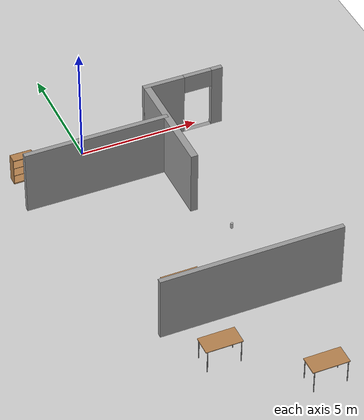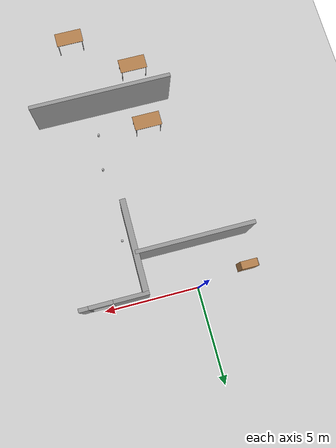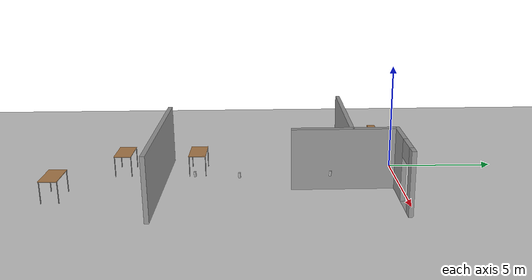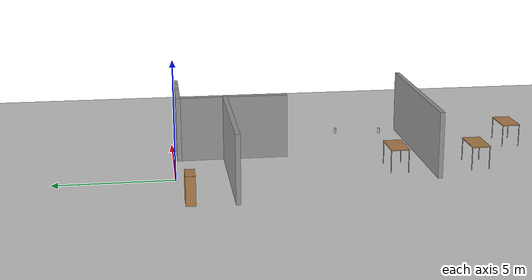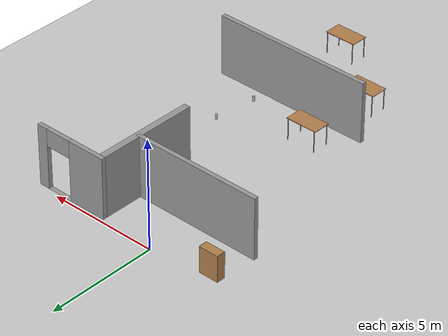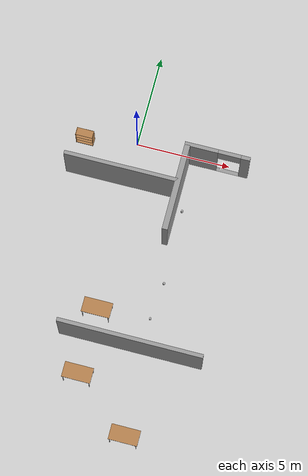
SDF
<sdf version="1.7">
 <world name="default">
  <light name="sun" type="directional">
   <pose>0 0 10 0 -0 0</pose>
   <diffuse>0.8 0.8 0.8 1</diffuse>
   <specular>0.2 0.2 0.2 1</specular>
   <attenuation>
    <range>1000</range>
    <constant>0.9</constant>
    <linear>0.01</linear>
    <quadratic>0.001</quadratic>
   </attenuation>
   <direction>-0.5 0.1 -0.9</direction>
   <spot><inner_angle>0</inner_angle><outer_angle>0</outer_angle><falloff>0</falloff></spot>
  </light>
  <model name="ground_plane">
   <static>1</static>
   <link name="link">
    <collision name="collision">
     <geometry><plane><normal>0 0 1</normal><size>100 100</size></plane></geometry>
     <surface><friction><ode><mu>100</mu><mu2>50</mu2></ode></friction></surface>
    </collision>
    <visual name="visual">
     <cast_shadows>0</cast_shadows>
     <geometry><plane><normal>0 0 1</normal><size>100 100</size></plane></geometry>
     <material>
      <script><uri>file://media/materials/scripts/gazebo.material</uri><name>Gazebo/Grey</name></script>
     </material>
    </visual>
   </link>
  </model>
  <gravity>0 0 -9.8</gravity>
  <magnetic_field>6e-06 2.3e-05 -4.2e-05</magnetic_field>
  <atmosphere type="adiabatic"/>
  <physics type="ode">
   <max_step_size>0.001</max_step_size>
   <real_time_factor>1</real_time_factor>
   <real_time_update_rate>1000</real_time_update_rate>
  </physics>
  <scene><ambient>0.4 0.4 0.4 1</ambient><background>0.7 0.7 0.7 1</background><shadows>1</shadows></scene>
  <spherical_coordinates>
   <surface_model>EARTH_WGS84</surface_model>
   <latitude_deg>0</latitude_deg>
   <longitude_deg>0</longitude_deg>
   <elevation>0</elevation>
   <heading_deg>0</heading_deg>
  </spherical_coordinates>
  <model name="table">
   <static>1</static>
   <link name="link">
    <collision name="surface">
     <pose>0 0 1 0 -0 0</pose>
     <geometry><box><size>1.5 0.8 0.03</size></box></geometry>
     <surface><friction><ode><mu>0.6</mu><mu2>0.6</mu2></ode></friction></surface>
    </collision>
    <visual name="visual1">
     <pose>0 0 1 0 -0 0</pose>
     <geometry><box><size>1.5 0.8 0.03</size></box></geometry>
     <material>
      <script><uri>file://media/materials/scripts/gazebo.material</uri><name>Gazebo/Wood</name></script>
     </material>
    </visual>
    <collision name="front_left_leg">
     <pose>0.68 0.38 0.5 0 -0 0</pose>
     <geometry><cylinder><radius>0.02</radius><length>1</length></cylinder></geometry>
    </collision>
    <visual name="front_left_leg">
     <pose>0.68 0.38 0.5 0 -0 0</pose>
     <geometry><cylinder><radius>0.02</radius><length>1</length></cylinder></geometry>
     <material>
      <script><uri>file://media/materials/scripts/gazebo.material</uri><name>Gazebo/Grey</name></script>
     </material>
    </visual>
    <collision name="front_right_leg">
     <pose>0.68 -0.38 0.5 0 -0 0</pose>
     <geometry><cylinder><radius>0.02</radius><length>1</length></cylinder></geometry>
    </collision>
    <visual name="front_right_leg">
     <pose>0.68 -0.38 0.5 0 -0 0</pose>
     <geometry><cylinder><radius>0.02</radius><length>1</length></cylinder></geometry>
     <material>
      <script><uri>file://media/materials/scripts/gazebo.material</uri><name>Gazebo/Grey</name></script>
     </material>
    </visual>
    <collision name="back_right_leg">
     <pose>-0.68 -0.38 0.5 0 -0 0</pose>
     <geometry><cylinder><radius>0.02</radius><length>1</length></cylinder></geometry>
    </collision>
    <visual name="back_right_leg">
     <pose>-0.68 -0.38 0.5 0 -0 0</pose>
     <geometry><cylinder><radius>0.02</radius><length>1</length></cylinder></geometry>
     <material>
      <script><uri>file://media/materials/scripts/gazebo.material</uri><name>Gazebo/Grey</name></script>
     </material>
    </visual>
    <collision name="back_left_leg">
     <pose>-0.68 0.38 0.5 0 -0 0</pose>
     <geometry><cylinder><radius>0.02</radius><length>1</length></cylinder></geometry>
    </collision>
    <visual name="back_left_leg">
     <pose>-0.68 0.38 0.5 0 -0 0</pose>
     <geometry><cylinder><radius>0.02</radius><length>1</length></cylinder></geometry>
     <material>
      <script><uri>file://media/materials/scripts/gazebo.material</uri><name>Gazebo/Grey</name></script>
     </material>
    </visual>
   </link>
   <pose>0.349528 -9.32869 0 0 -0 0</pose>
  </model>
  <model name="beer">
   <link name="link">
    <pose>0 0 0.115 0 -0 0</pose>
    <inertial>
     <mass>0.39</mass>
     <inertia><ixx>0.00058</ixx><ixy>0</ixy><ixz>0</ixz><iyy>0.00058</iyy><iyz>0</iyz><izz>0.00019</izz></inertia>
    </inertial>
    <collision name="collision">
     <geometry><cylinder><radius>0.055</radius><length>0.23</length></cylinder></geometry>
    </collision>
    <visual name="visual">
     <geometry><cylinder><radius>0.055</radius><length>0.23</length></cylinder></geometry>
     <material>
      <script>
       <uri>model://beer/materials/scripts</uri>
       <uri>model://beer/materials/textures</uri>
       <name>Beer/Diffuse</name>
      </script>
     </material>
    </visual>
   </link>
   <pose>3.09993 -9.20004 0.775001 -1e-06 2.7e-05 0.030874</pose>
  </model>
  <model name="beer_0">
   <link name="link">
    <pose>0 0 0.115 0 -0 0</pose>
    <inertial>
     <mass>0.39</mass>
     <inertia><ixx>0.00058</ixx><ixy>0</ixy><ixz>0</ixz><iyy>0.00058</iyy><iyz>0</iyz><izz>0.00019</izz></inertia>
    </inertial>
    <collision name="collision">
     <geometry><cylinder><radius>0.055</radius><length>0.23</length></cylinder></geometry>
    </collision>
    <visual name="visual">
     <geometry><cylinder><radius>0.055</radius><length>0.23</length></cylinder></geometry>
     <material>
      <script>
       <uri>model://beer/materials/scripts</uri>
       <uri>model://beer/materials/textures</uri>
       <name>Beer/Diffuse</name>
      </script>
     </material>
    </visual>
   </link>
   <pose>3.2523 -3.26601 0.775001 -1e-06 2.6e-05 0.019519</pose>
  </model>
  <model name="table_1">
   <static>1</static>
   <link name="link">
    <collision name="surface">
     <pose>0 0 1 0 -0 0</pose>
     <geometry><box><size>1.5 0.8 0.03</size></box></geometry>
     <surface><friction><ode><mu>0.6</mu><mu2>0.6</mu2></ode></friction></surface>
    </collision>
    <visual name="visual1">
     <pose>0 0 1 0 -0 0</pose>
     <geometry><box><size>1.5 0.8 0.03</size></box></geometry>
     <material>
      <script><uri>file://media/materials/scripts/gazebo.material</uri><name>Gazebo/Wood</name></script>
     </material>
    </visual>
    <collision name="front_left_leg">
     <pose>0.68 0.38 0.5 0 -0 0</pose>
     <geometry><cylinder><radius>0.02</radius><length>1</length></cylinder></geometry>
    </collision>
    <visual name="front_left_leg">
     <pose>0.68 0.38 0.5 0 -0 0</pose>
     <geometry><cylinder><radius>0.02</radius><length>1</length></cylinder></geometry>
     <material>
      <script><uri>file://media/materials/scripts/gazebo.material</uri><name>Gazebo/Grey</name></script>
     </material>
    </visual>
    <collision name="front_right_leg">
     <pose>0.68 -0.38 0.5 0 -0 0</pose>
     <geometry><cylinder><radius>0.02</radius><length>1</length></cylinder></geometry>
    </collision>
    <visual name="front_right_leg">
     <pose>0.68 -0.38 0.5 0 -0 0</pose>
     <geometry><cylinder><radius>0.02</radius><length>1</length></cylinder></geometry>
     <material>
      <script><uri>file://media/materials/scripts/gazebo.material</uri><name>Gazebo/Grey</name></script>
     </material>
    </visual>
    <collision name="back_right_leg">
     <pose>-0.68 -0.38 0.5 0 -0 0</pose>
     <geometry><cylinder><radius>0.02</radius><length>1</length></cylinder></geometry>
    </collision>
    <visual name="back_right_leg">
     <pose>-0.68 -0.38 0.5 0 -0 0</pose>
     <geometry><cylinder><radius>0.02</radius><length>1</length></cylinder></geometry>
     <material>
      <script><uri>file://media/materials/scripts/gazebo.material</uri><name>Gazebo/Grey</name></script>
     </material>
    </visual>
    <collision name="back_left_leg">
     <pose>-0.68 0.38 0.5 0 -0 0</pose>
     <geometry><cylinder><radius>0.02</radius><length>1</length></cylinder></geometry>
    </collision>
    <visual name="back_left_leg">
     <pose>-0.68 0.38 0.5 0 -0 0</pose>
     <geometry><cylinder><radius>0.02</radius><length>1</length></cylinder></geometry>
     <material>
      <script><uri>file://media/materials/scripts/gazebo.material</uri><name>Gazebo/Grey</name></script>
     </material>
    </visual>
   </link>
   <pose>3.37991 -15.2712 0 0 -0 0</pose>
  </model>
  <model name="beer_4">
   <link name="link">
    <pose>0 0 0.115 0 -0 0</pose>
    <inertial>
     <mass>0.39</mass>
     <inertia><ixx>0.00058</ixx><ixy>0</ixy><ixz>0</ixz><iyy>0.00058</iyy><iyz>0</iyz><izz>0.00019</izz></inertia>
    </inertial>
    <collision name="collision">
     <geometry><cylinder><radius>0.055</radius><length>0.23</length></cylinder></geometry>
    </collision>
    <visual name="visual">
     <geometry><cylinder><radius>0.055</radius><length>0.23</length></cylinder></geometry>
     <material>
      <script>
       <uri>model://beer/materials/scripts</uri>
       <uri>model://beer/materials/textures</uri>
       <name>Beer/Diffuse</name>
      </script>
     </material>
    </visual>
   </link>
   <pose>3.32341 -7.24273 0.77499 1e-06 -2.7e-05 0.028266</pose>
  </model>
  <model name="bookshelf_0">
   <static>1</static>
   <link name="link">
    <inertial><mass>1</mass></inertial>
    <collision name="back">
     <pose>0 0.005 0.6 0 -0 0</pose>
     <geometry><box><size>0.9 0.01 1.2</size></box></geometry>
    </collision>
    <visual name="visual1">
     <pose>0 0.005 0.6 0 -0 0</pose>
     <geometry><box><size>0.9 0.01 1.2</size></box></geometry>
     <material>
      <script><uri>file://media/materials/scripts/gazebo.material</uri><name>Gazebo/Wood</name></script>
     </material>
    </visual>
    <collision name="left_side">
     <pose>0.45 -0.195 0.6 0 -0 0</pose>
     <geometry><box><size>0.02 0.4 1.2</size></box></geometry>
    </collision>
    <visual name="visual2">
     <pose>0.45 -0.195 0.6 0 -0 0</pose>
     <geometry><box><size>0.02 0.4 1.2</size></box></geometry>
     <material>
      <script><uri>file://media/materials/scripts/gazebo.material</uri><name>Gazebo/Wood</name></script>
     </material>
    </visual>
    <collision name="right_side">
     <pose>-0.45 -0.195 0.6 0 -0 0</pose>
     <geometry><box><size>0.02 0.4 1.2</size></box></geometry>
    </collision>
    <visual name="visual3">
     <pose>-0.45 -0.195 0.6 0 -0 0</pose>
     <geometry><box><size>0.02 0.4 1.2</size></box></geometry>
     <material>
      <script><uri>file://media/materials/scripts/gazebo.material</uri><name>Gazebo/Wood</name></script>
     </material>
    </visual>
    <collision name="bottom">
     <pose>0 -0.195 0.03 0 -0 0</pose>
     <geometry><box><size>0.88 0.4 0.06</size></box></geometry>
    </collision>
    <visual name="visual4">
     <pose>0 -0.195 0.03 0 -0 0</pose>
     <geometry><box><size>0.88 0.4 0.06</size></box></geometry>
     <material>
      <script><uri>file://media/materials/scripts/gazebo.material</uri><name>Gazebo/Wood</name></script>
     </material>
    </visual>
    <collision name="top">
     <pose>0 -0.195 1.19 0 -0 0</pose>
     <geometry><box><size>0.88 0.4 0.02</size></box></geometry>
    </collision>
    <visual name="visual5">
     <pose>0 -0.195 1.19 0 -0 0</pose>
     <geometry><box><size>0.88 0.4 0.02</size></box></geometry>
     <material>
      <script><uri>file://media/materials/scripts/gazebo.material</uri><name>Gazebo/Wood</name></script>
     </material>
    </visual>
    <collision name="low_shelf">
     <pose>0 -0.195 0.43 0 -0 0</pose>
     <geometry><box><size>0.88 0.4 0.02</size></box></geometry>
    </collision>
    <visual name="visual6">
     <pose>0 -0.195 0.43 0 -0 0</pose>
     <geometry><box><size>0.88 0.4 0.02</size></box></geometry>
     <material>
      <script><uri>file://media/materials/scripts/gazebo.material</uri><name>Gazebo/Wood</name></script>
     </material>
    </visual>
    <collision name="high_shelf">
     <pose>0 -0.195 0.8 0 -0 0</pose>
     <geometry><box><size>0.88 0.4 0.02</size></box></geometry>
    </collision>
    <visual name="visual7">
     <pose>0 -0.195 0.8 0 -0 0</pose>
     <geometry><box><size>0.88 0.4 0.02</size></box></geometry>
     <material>
      <script><uri>file://media/materials/scripts/gazebo.material</uri><name>Gazebo/Wood</name></script>
     </material>
    </visual>
   </link>
   <pose>-2.72283 -0.27346 0 0 -0 0</pose>
  </model>
  <model name="grey_wall">
   <static>1</static>
   <link name="link">
    <pose>0 0 1.4 0 -0 0</pose>
    <collision name="collision"><geometry><box><size>7.5 0.2 2.8</size></box></geometry></collision>
    <visual name="visual">
     <cast_shadows>0</cast_shadows>
     <geometry><box><size>7.5 0.2 2.8</size></box></geometry>
     <material>
      <script>
       <uri>model://grey_wall/materials/scripts</uri>
       <uri>model://grey_wall/materials/textures</uri>
       <name>vrc/grey_wall</name>
      </script>
     </material>
    </visual>
   </link>
   <pose>2.48885 -10.8081 0 0 -0 0</pose>
  </model>
  <model name="table_0">
   <static>1</static>
   <link name="link">
    <collision name="surface">
     <pose>0 0 1 0 -0 0</pose>
     <geometry><box><size>1.5 0.8 0.03</size></box></geometry>
     <surface><friction><ode><mu>0.6</mu><mu2>0.6</mu2></ode></friction></surface>
    </collision>
    <visual name="visual1">
     <pose>0 0 1 0 -0 0</pose>
     <geometry><box><size>1.5 0.8 0.03</size></box></geometry>
     <material>
      <script><uri>file://media/materials/scripts/gazebo.material</uri><name>Gazebo/Wood</name></script>
     </material>
    </visual>
    <collision name="front_left_leg">
     <pose>0.68 0.38 0.5 0 -0 0</pose>
     <geometry><cylinder><radius>0.02</radius><length>1</length></cylinder></geometry>
    </collision>
    <visual name="front_left_leg">
     <pose>0.68 0.38 0.5 0 -0 0</pose>
     <geometry><cylinder><radius>0.02</radius><length>1</length></cylinder></geometry>
     <material>
      <script><uri>file://media/materials/scripts/gazebo.material</uri><name>Gazebo/Grey</name></script>
     </material>
    </visual>
    <collision name="front_right_leg">
     <pose>0.68 -0.38 0.5 0 -0 0</pose>
     <geometry><cylinder><radius>0.02</radius><length>1</length></cylinder></geometry>
    </collision>
    <visual name="front_right_leg">
     <pose>0.68 -0.38 0.5 0 -0 0</pose>
     <geometry><cylinder><radius>0.02</radius><length>1</length></cylinder></geometry>
     <material>
      <script><uri>file://media/materials/scripts/gazebo.material</uri><name>Gazebo/Grey</name></script>
     </material>
    </visual>
    <collision name="back_right_leg">
     <pose>-0.68 -0.38 0.5 0 -0 0</pose>
     <geometry><cylinder><radius>0.02</radius><length>1</length></cylinder></geometry>
    </collision>
    <visual name="back_right_leg">
     <pose>-0.68 -0.38 0.5 0 -0 0</pose>
     <geometry><cylinder><radius>0.02</radius><length>1</length></cylinder></geometry>
     <material>
      <script><uri>file://media/materials/scripts/gazebo.material</uri><name>Gazebo/Grey</name></script>
     </material>
    </visual>
    <collision name="back_left_leg">
     <pose>-0.68 0.38 0.5 0 -0 0</pose>
     <geometry><cylinder><radius>0.02</radius><length>1</length></cylinder></geometry>
    </collision>
    <visual name="back_left_leg">
     <pose>-0.68 0.38 0.5 0 -0 0</pose>
     <geometry><cylinder><radius>0.02</radius><length>1</length></cylinder></geometry>
     <material>
      <script><uri>file://media/materials/scripts/gazebo.material</uri><name>Gazebo/Grey</name></script>
     </material>
    </visual>
   </link>
   <pose>0.289375 -12.8176 0 0 -0 0</pose>
  </model>
  <model name="Untitled">
   <pose>1.39732 -1.187 0 0 -0 0</pose>
   <link name="Wall_0">
    <pose>2.93233 0.928384 0 0 -0 0</pose>
    <visual name="Wall_0_Visual_0">
     <pose>-0.84188 0 1.4 0 -0 0</pose>
     <geometry><box><size>1.76624 0.2 2.8</size></box></geometry>
     <material>
      <script><uri>file://media/materials/scripts/gazebo.material</uri><name>Gazebo/Grey</name></script>
      <ambient>1 1 1 1</ambient>
     </material>
     <meta><layer>0</layer></meta>
    </visual>
    <collision name="Wall_0_Collision_0">
     <geometry><box><size>1.76624 0.2 2.8</size></box></geometry>
     <pose>-0.84188 0 1.4 0 -0 0</pose>
    </collision>
    <visual name="Wall_0_Visual_1">
     <pose>1.48312 0 1.4 0 -0 0</pose>
     <geometry><box><size>0.48376 0.2 2.8</size></box></geometry>
     <material>
      <script><uri>file://media/materials/scripts/gazebo.material</uri><name>Gazebo/Grey</name></script>
      <ambient>1 1 1 1</ambient>
     </material>
     <meta><layer>0</layer></meta>
    </visual>
    <collision name="Wall_0_Collision_1">
     <geometry><box><size>0.48376 0.2 2.8</size></box></geometry>
     <pose>1.48312 0 1.4 0 -0 0</pose>
    </collision>
    <visual name="Wall_0_Visual_2">
     <pose>0.64124 0 0 0 -0 0</pose>
     <geometry><box><size>1.2 0.2 0</size></box></geometry>
     <material>
      <script><uri>file://media/materials/scripts/gazebo.material</uri><name>Gazebo/Grey</name></script>
      <ambient>1 1 1 1</ambient>
     </material>
     <meta><layer>0</layer></meta>
    </visual>
    <collision name="Wall_0_Collision_2">
     <geometry><box><size>1.2 0.2 0</size></box></geometry>
     <pose>0.64124 0 0 0 -0 0</pose>
    </collision>
    <visual name="Wall_0_Visual_3">
     <pose>0.64124 0 2.4 0 -0 0</pose>
     <geometry><box><size>1.2 0.2 0.8</size></box></geometry>
     <material>
      <script><uri>file://media/materials/scripts/gazebo.material</uri><name>Gazebo/Grey</name></script>
      <ambient>1 1 1 1</ambient>
     </material>
     <meta><layer>0</layer></meta>
    </visual>
    <collision name="Wall_0_Collision_3">
     <geometry><box><size>1.2 0.2 0.8</size></box></geometry>
     <pose>0.64124 0 2.4 0 -0 0</pose>
    </collision>
   </link>
   <link name="Wall_1">
    <collision name="Wall_1_Collision">
     <geometry><box><size>0.15 0.15 2.5</size></box></geometry>
     <pose>0 0 1.25 0 -0 0</pose>
    </collision>
    <visual name="Wall_1_Visual">
     <pose>0 0 1.25 0 -0 0</pose>
     <geometry><box><size>0.15 0.15 2.5</size></box></geometry>
     <material>
      <script><uri>file://media/materials/scripts/gazebo.material</uri><name>Gazebo/Grey</name></script>
      <ambient>1 1 1 1</ambient>
     </material>
     <meta><layer>0</layer></meta>
    </visual>
    <pose>4.55733 0.92406 0 0 -0 0</pose>
   </link>
   <link name="Wall_3">
    <collision name="Wall_3_Collision">
     <geometry><box><size>6.05002 0.2 2.8</size></box></geometry>
     <pose>0 0 1.4 0 -0 0</pose>
    </collision>
    <visual name="Wall_3_Visual">
     <pose>0 0 1.4 0 -0 0</pose>
     <geometry><box><size>6.05002 0.2 2.8</size></box></geometry>
     <material>
      <script><uri>file://media/materials/scripts/gazebo.material</uri><name>Gazebo/Grey</name></script>
      <ambient>1 1 1 1</ambient>
     </material>
     <meta><layer>0</layer></meta>
    </visual>
    <pose>-1.63232 -1.087 0 0 -0 0</pose>
   </link>
   <static>1</static>
  </model>
  <model name="Untitled_0">
   <pose>1.45301 -2.48492 0 0 -0 0</pose>
   <link name="Wall_0">
    <collision name="Wall_0_Collision">
     <geometry><box><size>4.65 0.3 2.8</size></box></geometry>
     <pose>0 0 1.4 0 -0 0</pose>
    </collision>
    <visual name="Wall_0_Visual">
     <pose>0 0 1.4 0 -0 0</pose>
     <geometry><box><size>4.65 0.3 2.8</size></box></geometry>
     <material>
      <script><uri>file://media/materials/scripts/gazebo.material</uri><name>Gazebo/Grey</name></script>
      <ambient>1 1 1 1</ambient>
     </material>
     <meta><layer>0</layer></meta>
    </visual>
    <pose>1.303 -0.159921 0 0 -0 -1.5708</pose>
   </link>
   <static>1</static>
  </model>
 </world>
</sdf>
